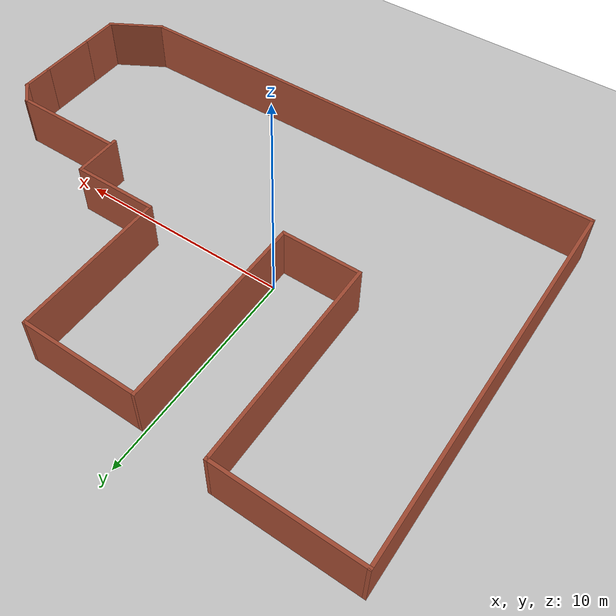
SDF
<sdf version="1.6">
 <world name="default">
  <light name="sun" type="directional">
   <pose>0 0 10 0 -0 0</pose>
   <diffuse>0.8 0.8 0.8 1</diffuse>
   <specular>0.2 0.2 0.2 1</specular>
   <attenuation>
    <range>1000</range>
    <constant>0.9</constant>
    <linear>0.01</linear>
    <quadratic>0.001</quadratic>
   </attenuation>
   <direction>-0.5 0.1 -0.9</direction>
  </light>
  <model name="ground_plane">
   <static>1</static>
   <link name="link">
    <collision name="collision">
     <geometry><plane><normal>0 0 1</normal><size>100 100</size></plane></geometry>
     <surface>
      <contact><collide_bitmask>65535</collide_bitmask></contact>
      <friction><ode><mu>100</mu><mu2>50</mu2></ode></friction>
     </surface>
    </collision>
    <visual name="visual">
     <cast_shadows>0</cast_shadows>
     <geometry><plane><normal>0 0 1</normal><size>100 100</size></plane></geometry>
     <material>
      <script><uri>file://media/materials/scripts/gazebo.material</uri><name>Gazebo/Grey</name></script>
     </material>
    </visual>
   </link>
  </model>
  <gravity>0 0 -9.8</gravity>
  <magnetic_field>6e-06 2.3e-05 -4.2e-05</magnetic_field>
  <atmosphere type="adiabatic"/>
  <physics name="default_physics" default="0" type="ode">
   <max_step_size>0.001</max_step_size>
   <real_time_factor>1</real_time_factor>
   <real_time_update_rate>1000</real_time_update_rate>
  </physics>
  <scene><ambient>0.4 0.4 0.4 1</ambient><background>0.7 0.7 0.7 1</background><shadows>1</shadows></scene>
  <audio><device>default</device></audio>
  <spherical_coordinates>
   <surface_model>EARTH_WGS84</surface_model>
   <latitude_deg>0</latitude_deg>
   <longitude_deg>0</longitude_deg>
   <elevation>0</elevation>
   <heading_deg>0</heading_deg>
  </spherical_coordinates>
  <model name="random_model">
   <pose>2.80807 -0.051947 0 0 -0 0</pose>
   <link name="Wall_0">
    <collision name="Wall_0_Collision">
     <geometry><box><size>5.25 0.15 2.5</size></box></geometry>
     <pose>0 0 1.25 0 -0 0</pose>
    </collision>
    <visual name="Wall_0_Visual">
     <pose>0 0 1.25 0 -0 0</pose>
     <geometry><box><size>5.25 0.15 2.5</size></box></geometry>
     <material>
      <script><uri>file://media/materials/scripts/gazebo.material</uri><name>Gazebo/Bricks</name></script>
      <ambient>1 1 1 1</ambient>
     </material>
     <meta><layer>0</layer></meta>
    </visual>
    <pose>9.20748 -0.783457 0 0 -0 0</pose>
   </link>
   <link name="Wall_1">
    <collision name="Wall_1_Collision">
     <geometry><box><size>1.25 0.15 2.5</size></box></geometry>
     <pose>0 0 1.25 0 -0 0</pose>
    </collision>
    <visual name="Wall_1_Visual">
     <pose>0 0 1.25 0 -0 0</pose>
     <geometry><box><size>1.25 0.15 2.5</size></box></geometry>
     <material>
      <script><uri>file://media/materials/scripts/gazebo.material</uri><name>Gazebo/Bricks</name></script>
      <ambient>1 1 1 1</ambient>
     </material>
     <meta><layer>0</layer></meta>
    </visual>
    <pose>12.1464 -1.17237 0 0 -0 -0.785398</pose>
   </link>
   <link name="Wall_10">
    <collision name="Wall_10_Collision">
     <geometry><box><size>3.75 0.15 2.5</size></box></geometry>
     <pose>0 0 1.25 0 -0 0</pose>
    </collision>
    <visual name="Wall_10_Visual">
     <pose>0 0 1.25 0 -0 0</pose>
     <geometry><box><size>3.75 0.15 2.5</size></box></geometry>
     <material>
      <script><uri>file://media/materials/scripts/gazebo.material</uri><name>Gazebo/Bricks</name></script>
      <ambient>1 1 1 1</ambient>
     </material>
     <meta><layer>0</layer></meta>
    </visual>
    <pose>-4.41637 -0.911274 0 0 -0 0</pose>
   </link>
   <link name="Wall_11">
    <collision name="Wall_11_Collision">
     <geometry><box><size>9.25 0.15 2.5</size></box></geometry>
     <pose>0 0 1.25 0 -0 0</pose>
    </collision>
    <visual name="Wall_11_Visual">
     <pose>0 0 1.25 0 -0 0</pose>
     <geometry><box><size>9.25 0.15 2.5</size></box></geometry>
     <material>
      <script><uri>file://media/materials/scripts/gazebo.material</uri><name>Gazebo/Bricks</name></script>
      <ambient>1 1 1 1</ambient>
     </material>
     <meta><layer>0</layer></meta>
    </visual>
    <pose>-2.61637 3.63873 0 0 -0 1.5708</pose>
   </link>
   <link name="Wall_12">
    <collision name="Wall_12_Collision">
     <geometry><box><size>5.5 0.15 2.5</size></box></geometry>
     <pose>0 0 1.25 0 -0 0</pose>
    </collision>
    <visual name="Wall_12_Visual">
     <pose>0 0 1.25 0 -0 0</pose>
     <geometry><box><size>5.5 0.15 2.5</size></box></geometry>
     <material>
      <script><uri>file://media/materials/scripts/gazebo.material</uri><name>Gazebo/Bricks</name></script>
      <ambient>1 1 1 1</ambient>
     </material>
     <meta><layer>0</layer></meta>
    </visual>
    <pose>0.058634 8.18872 0 0 -0 0</pose>
   </link>
   <link name="Wall_13">
    <collision name="Wall_13_Collision">
     <geometry><box><size>7.25 0.15 2.5</size></box></geometry>
     <pose>0 0 1.25 0 -0 0</pose>
    </collision>
    <visual name="Wall_13_Visual">
     <pose>0 0 1.25 0 -0 0</pose>
     <geometry><box><size>7.25 0.15 2.5</size></box></geometry>
     <material>
      <script><uri>file://media/materials/scripts/gazebo.material</uri><name>Gazebo/Bricks</name></script>
      <ambient>1 1 1 1</ambient>
     </material>
     <meta><layer>0</layer></meta>
    </visual>
    <pose>2.73363 4.63873 0 0 -0 -1.5708</pose>
   </link>
   <link name="Wall_14">
    <collision name="Wall_14_Collision">
     <geometry><box><size>4 0.15 2.5</size></box></geometry>
     <pose>0 0 1.25 0 -0 0</pose>
    </collision>
    <visual name="Wall_14_Visual">
     <pose>0 0 1.25 0 -0 0</pose>
     <geometry><box><size>4 0.15 2.5</size></box></geometry>
     <material>
      <script><uri>file://media/materials/scripts/gazebo.material</uri><name>Gazebo/Bricks</name></script>
      <ambient>1 1 1 1</ambient>
     </material>
     <meta><layer>0</layer></meta>
    </visual>
    <pose>4.65863 1.08873 0 0 -0 0</pose>
   </link>
   <link name="Wall_15">
    <collision name="Wall_15_Collision">
     <geometry><box><size>2.25 0.15 2.5</size></box></geometry>
     <pose>0 0 1.25 0 -0 0</pose>
    </collision>
    <visual name="Wall_15_Visual">
     <pose>0 0 1.25 0 -0 0</pose>
     <geometry><box><size>2.25 0.15 2.5</size></box></geometry>
     <material>
      <script><uri>file://media/materials/scripts/gazebo.material</uri><name>Gazebo/Bricks</name></script>
      <ambient>1 1 1 1</ambient>
     </material>
     <meta><layer>0</layer></meta>
    </visual>
    <pose>6.58363 0.038726 0 0 -0 -1.5708</pose>
   </link>
   <link name="Wall_2">
    <collision name="Wall_2_Collision">
     <geometry><box><size>1.5 0.15 2.5</size></box></geometry>
     <pose>0 0 1.25 0 -0 0</pose>
    </collision>
    <visual name="Wall_2_Visual">
     <pose>0 0 1.25 0 -0 0</pose>
     <geometry><box><size>1.5 0.15 2.5</size></box></geometry>
     <material>
      <script><uri>file://media/materials/scripts/gazebo.material</uri><name>Gazebo/Bricks</name></script>
      <ambient>1 1 1 1</ambient>
     </material>
     <meta><layer>0</layer></meta>
    </visual>
    <pose>12.5353 -2.23627 0 0 -0 -1.5708</pose>
   </link>
   <link name="Wall_3">
    <collision name="Wall_3_Collision">
     <geometry><box><size>2.75 0.15 2.5</size></box></geometry>
     <pose>0 0 1.25 0 -0 0</pose>
    </collision>
    <visual name="Wall_3_Visual">
     <pose>0 0 1.25 0 -0 0</pose>
     <geometry><box><size>2.75 0.15 2.5</size></box></geometry>
     <material>
      <script><uri>file://media/materials/scripts/gazebo.material</uri><name>Gazebo/Bricks</name></script>
      <ambient>1 1 1 1</ambient>
     </material>
     <meta><layer>0</layer></meta>
    </visual>
    <pose>12.5353 -4.21127 0 0 -0 -1.5708</pose>
   </link>
   <link name="Wall_4">
    <collision name="Wall_4_Collision">
     <geometry><box><size>2 0.15 2.5</size></box></geometry>
     <pose>0 0 1.25 0 -0 0</pose>
    </collision>
    <visual name="Wall_4_Visual">
     <pose>0 0 1.25 0 -0 0</pose>
     <geometry><box><size>2 0.15 2.5</size></box></geometry>
     <material>
      <script><uri>file://media/materials/scripts/gazebo.material</uri><name>Gazebo/Bricks</name></script>
      <ambient>1 1 1 1</ambient>
     </material>
     <meta><layer>0</layer></meta>
    </visual>
    <pose>12.5353 -6.43628 0 0 -0 -1.5708</pose>
   </link>
   <link name="Wall_5">
    <collision name="Wall_5_Collision">
     <geometry><box><size>2.75 0.15 2.5</size></box></geometry>
     <pose>0 0 1.25 0 -0 0</pose>
    </collision>
    <visual name="Wall_5_Visual">
     <pose>0 0 1.25 0 -0 0</pose>
     <geometry><box><size>2.75 0.15 2.5</size></box></geometry>
     <material>
      <script><uri>file://media/materials/scripts/gazebo.material</uri><name>Gazebo/Bricks</name></script>
      <ambient>1 1 1 1</ambient>
     </material>
     <meta><layer>0</layer></meta>
    </visual>
    <pose>11.4095 -8.01127 0 0 -0 -2.61799</pose>
   </link>
   <link name="Wall_6">
    <collision name="Wall_6_Collision">
     <geometry><box><size>23 0.15 2.5</size></box></geometry>
     <pose>0 0 1.25 0 -0 0</pose>
    </collision>
    <visual name="Wall_6_Visual">
     <pose>0 0 1.25 0 -0 0</pose>
     <geometry><box><size>23 0.15 2.5</size></box></geometry>
     <material>
      <script><uri>file://media/materials/scripts/gazebo.material</uri><name>Gazebo/Bricks</name></script>
      <ambient>1 1 1 1</ambient>
     </material>
     <meta><layer>0</layer></meta>
    </visual>
    <pose>-1.14137 -8.66127 0 0 -0 3.14159</pose>
   </link>
   <link name="Wall_7">
    <collision name="Wall_7_Collision">
     <geometry><box><size>17.5 0.15 2.5</size></box></geometry>
     <pose>0 0 1.25 0 -0 0</pose>
    </collision>
    <visual name="Wall_7_Visual">
     <pose>0 0 1.25 0 -0 0</pose>
     <geometry><box><size>17.5 0.15 2.5</size></box></geometry>
     <material>
      <script><uri>file://media/materials/scripts/gazebo.material</uri><name>Gazebo/Bricks</name></script>
      <ambient>1 1 1 1</ambient>
     </material>
     <meta><layer>0</layer></meta>
    </visual>
    <pose>-12.5664 0.013726 0 0 -0 1.5708</pose>
   </link>
   <link name="Wall_8">
    <collision name="Wall_8_Collision">
     <geometry><box><size>6.5 0.15 2.5</size></box></geometry>
     <pose>0 0 1.25 0 -0 0</pose>
    </collision>
    <visual name="Wall_8_Visual">
     <pose>0 0 1.25 0 -0 0</pose>
     <geometry><box><size>6.5 0.15 2.5</size></box></geometry>
     <material>
      <script><uri>file://media/materials/scripts/gazebo.material</uri><name>Gazebo/Bricks</name></script>
      <ambient>1 1 1 1</ambient>
     </material>
     <meta><layer>0</layer></meta>
    </visual>
    <pose>-9.39137 8.68872 0 0 -0 0</pose>
   </link>
   <link name="Wall_9">
    <collision name="Wall_9_Collision">
     <geometry><box><size>9.75 0.15 2.5</size></box></geometry>
     <pose>0 0 1.25 0 -0 0</pose>
    </collision>
    <visual name="Wall_9_Visual">
     <pose>0 0 1.25 0 -0 0</pose>
     <geometry><box><size>9.75 0.15 2.5</size></box></geometry>
     <material>
      <script><uri>file://media/materials/scripts/gazebo.material</uri><name>Gazebo/Bricks</name></script>
      <ambient>1 1 1 1</ambient>
     </material>
     <meta><layer>0</layer></meta>
    </visual>
    <pose>-6.21637 3.88873 0 0 -0 -1.5708</pose>
   </link>
   <static>1</static>
  </model>
 </world>
</sdf>
